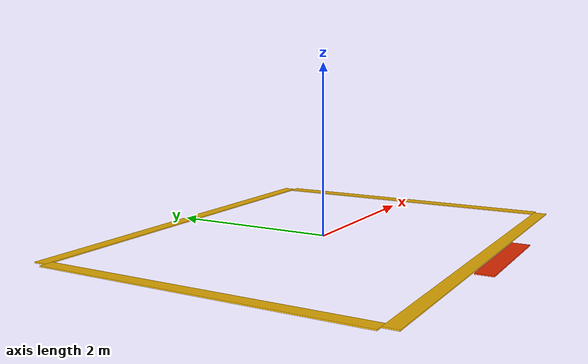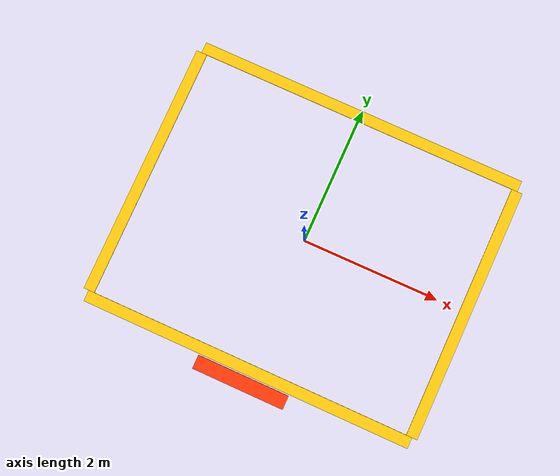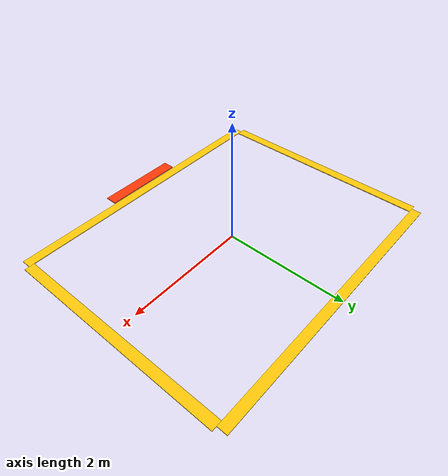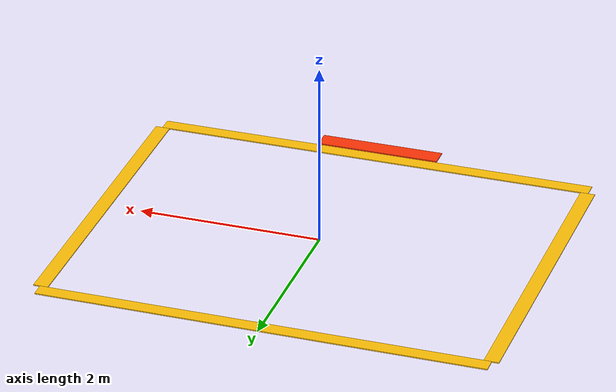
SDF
<?xml version="1.0"?>

<sdf version="1.10">

  <model name="floor_markings">

    <static>true</static>

    <link name="floor_markings_link">

      <visual name="front_warning_strip">
        <pose>0 -1.92 0.006 0 0 0</pose>

        <geometry>
          <box>
            <size>4.85 0.16 0.012</size>
          </box>
        </geometry>

        <material>
          <ambient>0.90 0.60 0.01 1</ambient>
          <diffuse>1.00 0.75 0.02 1</diffuse>
        </material>
      </visual>

      <visual name="rear_warning_strip">
        <pose>0 1.92 0.006 0 0 0</pose>

        <geometry>
          <box>
            <size>4.85 0.16 0.012</size>
          </box>
        </geometry>

        <material>
          <ambient>0.90 0.60 0.01 1</ambient>
          <diffuse>1.00 0.75 0.02 1</diffuse>
        </material>
      </visual>

      <visual name="left_warning_strip">
        <pose>-2.42 0 0.006 0 0 0</pose>

        <geometry>
          <box>
            <size>0.16 3.68 0.012</size>
          </box>
        </geometry>

        <material>
          <ambient>0.90 0.60 0.01 1</ambient>
          <diffuse>1.00 0.75 0.02 1</diffuse>
        </material>
      </visual>

      <visual name="right_warning_strip">
        <pose>2.42 0 0.006 0 0 0</pose>

        <geometry>
          <box>
            <size>0.16 3.68 0.012</size>
          </box>
        </geometry>

        <material>
          <ambient>0.90 0.60 0.01 1</ambient>
          <diffuse>1.00 0.75 0.02 1</diffuse>
        </material>
      </visual>

      <visual name="operator_entrance_zone">
        <pose>0 -2.12 0.007 0 0 0</pose>

        <geometry>
          <box>
            <size>1.35 0.20 0.014</size>
          </box>
        </geometry>

        <material>
          <ambient>0.80 0.08 0.01 1</ambient>
          <diffuse>1.00 0.20 0.02 1</diffuse>
        </material>
      </visual>

    </link>

  </model>

</sdf>
